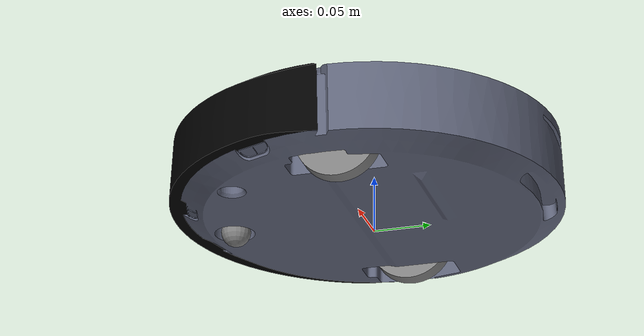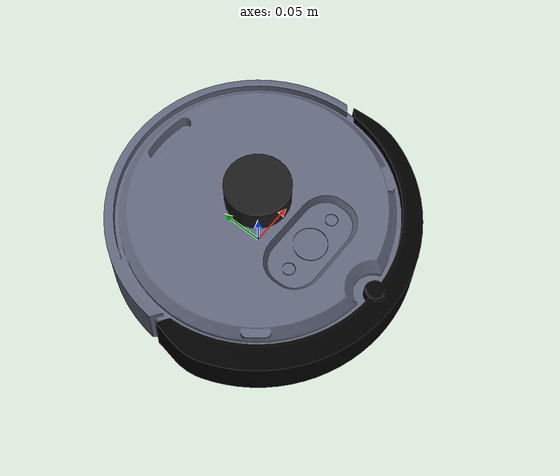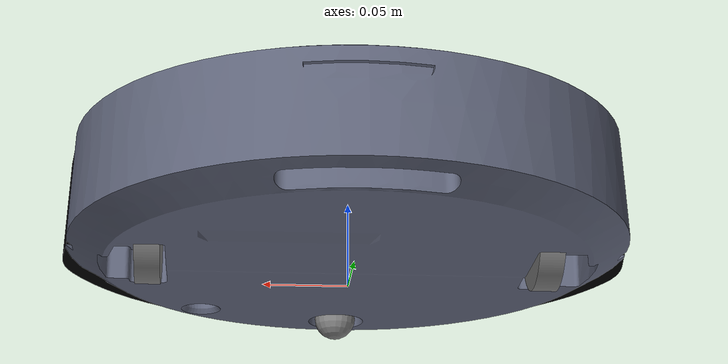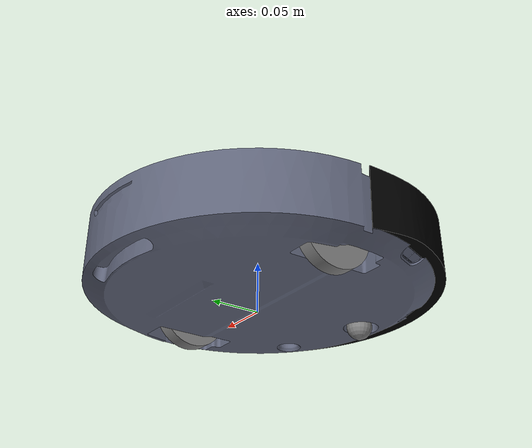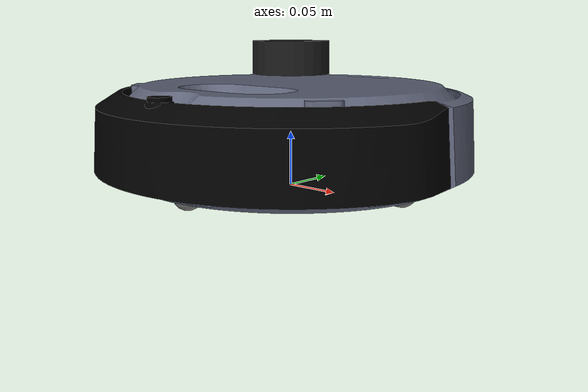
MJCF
<mujoco model="turtlebot4">
  <compiler angle="radian" coordinate="local" meshdir="./assets/meshes" autolimits="true"/>
  <size nstack="300000" nuser_geom="1"/>
  <option gravity="0 0 -9.81" timestep="0.002"/>

  <asset>
    <material name="metal" rgba=".9 .95 .95 1"/>
    <material name="black" rgba="0 0 0 1"/>
    <material name="white" rgba="1 1 1 1"/>
    <material name="gray" rgba="0.371705 0.392426 0.474270 1"/>
    <mesh file="body_visual_processed.stl" scale="0.1 0.1 0.1"/>
    <mesh file="bumper_visual.obj" scale="0.001 0.001 0.001"/>
    <mesh file="top_reduced.stl" scale="0.001 0.001 0.001"/>
    <mesh file="weight_block.stl" scale="0.001 0.001 0.001"/>
    <mesh file="wheel.stl" scale="0.001 0.001 0.001"/>
  </asset>

  <worldbody>
    <body name="base" pos="0 0 0.0392">
      <freejoint name="floating_base_joint"/>

      <!-- Robot geoms use group 1. The custom LiDAR ray caster includes
           group 0 only, preventing self-detection without changing collision. -->
      <geom type="mesh" mesh="body_visual_processed" material="gray" mass="0.269" group="1"/>

      <site name="base_frame" pos="0 0 0" quat="1 0 0 0" size="0.003"/>
      <site name="imu" pos="0.051 -0.035 0.0293"
            quat="1 0 0 0" size="0.003"/>

      <body name="bumper" pos="0 0 0" axisangle="0 0 1 4.71239">
        <geom type="mesh" mesh="bumper_visual" material="black" mass="0.1" group="1"/>
      </body>

      <body name="wheel_l" pos="0.11755 0.002 -0.0032">
        <geom type="mesh" mesh="wheel" group="1"/>
        <joint name="left" damping=".03" actuatorfrcrange="-.4 .4"
               pos="0 0 0" axis="1 0 0"/>
      </body>

      <body name="wheel_r" pos="-0.117 0.002 -0.0032">
        <geom type="mesh" mesh="wheel" group="1"/>
        <joint name="right" damping=".03" actuatorfrcrange="-.4 .4"
               pos="0 0 0" axis="1 0 0"/>
      </body>

      <body name="wheel_f" pos="0 -0.125 -0.026">
        <geom type="sphere" size="0.013 0.013" group="1"/>
        <joint type="ball"/>
      </body>

      <!-- Fixed 2D LiDAR frame. A complete 360-degree scan is generated
           by t2DLiDARSensor with mj_multiRay at one simulation timestamp. -->
      <body name="lidar" pos="0 0 0.08">
        <geom name="lidar_head_geom" type="cylinder" size="0.035 0.015"
              rgba="0.1 0.1 0.1 1" mass="0.01" group="1"/>
        <site name="laser_site" pos="0 0 0" quat="1 0 0 0"
              size="0.003" rgba="0 1 0 0.5"/>
      </body>
    </body>
  </worldbody>

  <tendon>
    <fixed name="forward">
      <joint joint="left" coef=".83"/>
      <joint joint="right" coef=".83"/>
    </fixed>
    <fixed name="turn">
      <joint joint="left" coef="-.1"/>
      <joint joint="right" coef=".1"/>
    </fixed>
  </tendon>

  <actuator>
    <motor name="forward" tendon="forward" ctrlrange="-0.5 0.5"/>
    <motor name="turn" tendon="turn" ctrlrange="-2 2"/>
  </actuator>

  <sensor>
    <!-- IMU -->
    <framequat name="imu_quat" objtype="site" objname="imu"/>
    <gyro name="imu_ang" site="imu"/>
    <accelerometer name="imu_acc" site="imu"/>

    <!-- Base pose and velocity for odometry. DSS keeps MuJoCo coordinates;
         dss_ros2_bridge converts them to ROS REP-103. -->
    <framepos name="base_pos" objtype="site" objname="base_frame"/>
    <framequat name="base_quat" objtype="site" objname="base_frame"/>
    <velocimeter name="base_linvel" site="base_frame"/>
    <gyro name="base_angvel" site="base_frame"/>

    <!-- Wheel joint states -->
    <jointpos name="left_pos" joint="left"/>
    <jointvel name="left_vel" joint="left"/>
    <jointpos name="right_pos" joint="right"/>
    <jointvel name="right_vel" joint="right"/>
  </sensor>
</mujoco>
